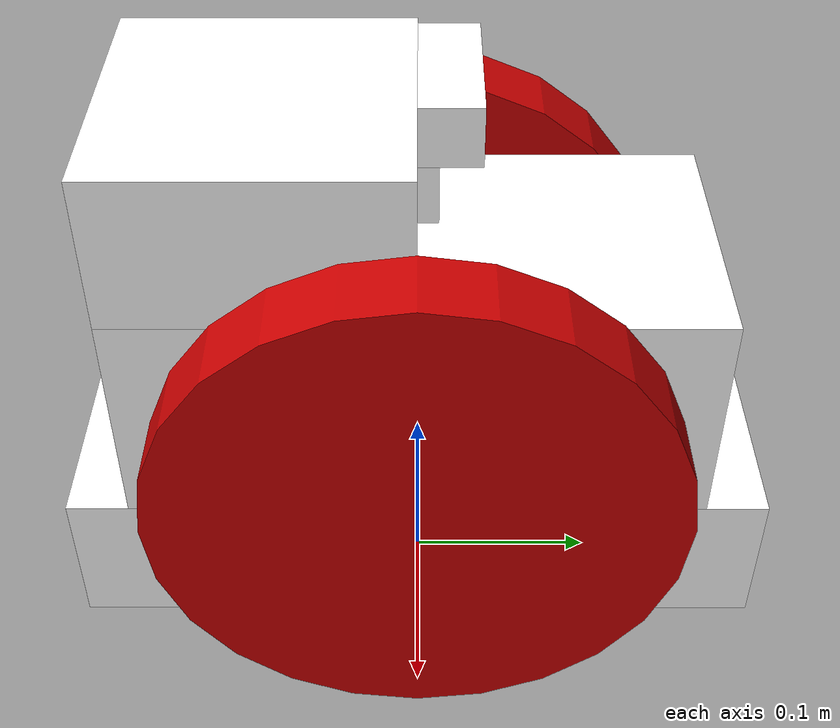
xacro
<?xml version="1.0"?>
<robot name="differential_wheeled_demo_robot" xmlns:xacro="http://ros.org/wiki/xacro">

<xacro:include filename="$(find demo_robot_description_pkg)/urdf/wheel2.urdf.xacro" />

<!-- Defining the colors used in this robot -->
  <material name="Black">
    <color rgba="0.0 0.0 0.0 1"/>
  </material>

  <material name="Red">
    <color rgba="0.8 0.0 0.0 1"/>
  </material>

  <material name="White">
    <color rgba="1.0 1.0 1.0 1"/>
  </material>

  <material name="Blue">
    <color rgba="0.0 0.0 0.8 1"/>
  </material>

  <!-- PROPERTY LIST: Mass is in kg, len in m -->
  <!--All units in m-kg-s-radians unit system -->
  <xacro:property name="M_PI" value="3.1415926535897931" />
  <xacro:property name="M_PI_2" value="1.570796327" />
  <xacro:property name="DEG_TO_RAD" value="0.017453293" />

  <!-- Base Properties -->
  <xacro:property name="base_mass" value="5.0" />
  <xacro:property name="base_height" value="0.080" />
  <xacro:property name="base_length" value="0.365" />
  <xacro:property name="base_width" value="0.15" />

  <!-- Mid Properties -->
  <xacro:property name="mid_mass" value="1.0" />
  <xacro:property name="mid_height" value="0.12" />
  <xacro:property name="mid_length" value="0.30" />
  <xacro:property name="mid_width" value="0.15" />

  <!-- Top Properties -->
  <xacro:property name="top_mass" value="0.50" />
  <xacro:property name="top_height" value="0.08" />
  <xacro:property name="top_length" value="0.15" />
  <xacro:property name="top_width" value="0.15" />

  <!-- Front Caster Wheel Properties -->
  <xacro:property name="caster_f_height" value="0.06" />
  <xacro:property name="caster_f_radius" value="0.03" />
  <xacro:property name="caster_f_mass" value="0.5" />

  <!-- Rear Caster Wheel Properties -->
  <xacro:property name="caster_b_height" value="0.06" />
  <xacro:property name="caster_b_radius" value="0.03" />
  <xacro:property name="caster_b_mass" value="0.5" />

  <!-- Side Wheels Properties -->
  <xacro:property name="wheel_mass" value="0" />
  <xacro:property name="base_x_origin_to_wheel_origin" value="0.08" />
  <xacro:property name="base_y_origin_to_wheel_origin" value="0.0" />
  <xacro:property name="base_z_origin_to_wheel_origin" value="0.0675" />

  <!-- Macro for calculating inertia of cylinder -->
  <xacro:macro name="cylinder_inertia" params="m r h">
    <inertia  ixx="${m*(3*r*r+h*h)/12}" ixy = "0" ixz = "0"
              iyy="${m*(3*r*r+h*h)/12}" iyz = "0"
              izz="${m*r*r/2}" />
  </xacro:macro>

  <!-- Base Footprint Link -->
  <!-- base_footprint is a fictitious link(frame) that is on the ground right below base_link origin -->
  <link name="base_footprint">
    <visual>
        <origin xyz="0 0 0" rpy="0 0 0" />
        <geometry>
            <box size="0.001 0.001 0.001" />
        </geometry>
    </visual>
  </link>

  <gazebo reference="base_footprint">
    <turnGravityOff>false</turnGravityOff>
  </gazebo>

  <!-- Footprint->Base Joint -->
  <joint name="base_footprint_joint" type="fixed">
    <origin xyz="0 0 ${caster_b_radius + (base_height / 2)}" rpy="0 0 0" />
    <parent link="base_footprint"/>
    <child link="base_link" />
  </joint>

  <!-- Base Link -->
  <link name="base_link">
    <inertial>
      <mass value="${base_mass}" />
      <origin xyz="0 0 0" />
      <inertia ixx="0.0001" ixy="0.0" ixz="0.0"
          iyy="0.0001" iyz="0.0"
          izz="0.0001" />
      <box size="${base_width} ${base_length} ${base_height}" />
    </inertial>
    <visual>
      <origin xyz="0 0 0" rpy="0 0 0" />
      <geometry>
          <box size="${base_width} ${base_length} ${base_height}" />
      </geometry>
      <material name="White" />
    </visual>
    <collision>
      <origin xyz="0 0 0" rpy="0 0 0" />
      <geometry>
          <box size="${base_width} ${base_length} ${base_height}" />
      </geometry>
    </collision>
  </link>

  <gazebo reference="base_link">
    <material>Gazebo/White</material>
    <turnGravityOff>false</turnGravityOff>
  </gazebo>

  <!-- Base->Mid Joint -->
  <joint name="base_mid_joint" type="fixed">
    <origin xyz="0 0 ${base_height/2 + mid_height/2}" rpy="0 0 0" />
    <parent link="base_link"/>
    <child link="mid_link" />
  </joint>

  <!-- Mid Link -->
  <link name="mid_link">
    <inertial>
      <mass value="${mid_mass}" />
      <origin xyz="0 0 0" />
      <inertia ixx="0.0001" ixy="0.0" ixz="0.0"
          iyy="0.0001" iyz="0.0"
          izz="0.0001" />
      <box size="${mid_width} ${mid_length} ${mid_height}" />
    </inertial>
    <visual>
      <origin xyz="0 0 0" rpy="0 0 0" />
      <geometry>
          <box size="${mid_width} ${mid_length} ${mid_height}" />
      </geometry>
      <material name="White" />
    </visual>
    <collision>
      <origin xyz="0 0 0" rpy="0 0 0 " />
      <geometry>
          <box size="${mid_width} ${mid_length} ${mid_height}" />
      </geometry>
    </collision>
  </link>

  <!-- Mid->Top Joint -->
  <joint name="mid_top_joint" type="fixed">
    <origin xyz="0 ${-top_length / 2} ${mid_height/2 + top_height/2}" rpy="0 0 0" />
    <parent link="mid_link"/>
    <child link="top_link" />
  </joint>

  <!-- Top Link -->
  <link name="top_link">
    <inertial>
      <mass value="${mid_mass}" />
      <origin xyz="0 0 0" />
      <inertia ixx="0.0001" ixy="0.0" ixz="0.0"
          iyy="0.0001" iyz="0.0"
          izz="0.0001" />
      <box size="${top_width} ${top_length} ${top_height}" />
    </inertial>
    <visual>
      <origin xyz="0 0 0" rpy="0 0 0" />
      <geometry>
          <box size="${top_width} ${top_length} ${top_height}" />
      </geometry>
      <material name="White" />
    </visual>
    <collision>
      <origin xyz="0 0 0" rpy="0 0 0" />
      <geometry>
          <box size="${top_width} ${top_length} ${top_height}" />
      </geometry>
    </collision>
  </link>

  <!-- D435 RGBD Camera -->
  <!-- Top->D435 RGBD Camera Joint -->
  <joint name="top_d435_joint" type="fixed">
    <origin xyz="0 ${top_length/2 + .015} ${top_height/2}" rpy="0 0 0" />
    <parent link="top_link"/>
    <child link="d435_link" />
  </joint>

  <!-- Top Link -->
  <link name="d435_link">
    <inertial>
      <mass value="${mid_mass}" />
      <origin xyz="0 0 0" />
      <inertia ixx="0.0001" ixy="0.0" ixz="0.0"
          iyy="0.0001" iyz="0.0"
          izz="0.0001" />
      <box size="0.08 0.03 0.03" />
    </inertial>
    <visual>
      <origin xyz="0 0 0" rpy="0 0 0" />
      <geometry>
          <box size="0.08 0.03 0.03" />
      </geometry>
      <material name="White" />
    </visual>
    <collision>
      <origin xyz="0 0 0" rpy="0 0 0 " />
      <geometry>
          <box size="0.08 0.03 0.03" />
      </geometry>
    </collision>
  </link>

  <!-- T265 Tracking Camera/IMU -->
  <!-- Top-T265 Joint -->
  <joint name="top_t265_joint" type="fixed">
    <origin xyz="0 ${top_length/2 + 0.005} ${top_height/2 - 0.03}" rpy="0 0 0" />
    <parent link="top_link"/>
    <child link="t265_link" />
  </joint>

  <!-- Top Link -->
  <link name="t265_link">
    <inertial>
      <mass value="${mid_mass}" />
      <origin xyz="0 0 0" />
      <inertia ixx="0.0001" ixy="0.0" ixz="0.0"
          iyy="0.0001" iyz="0.0"
          izz="0.0001" />
      <box size="0.08 0.01 0.03" />
    </inertial>
    <visual>
      <origin xyz="0 0 0" rpy="0 0 0" />
      <geometry>
          <box size="0.08 0.01 0.03" />
      </geometry>
      <material name="White" />
    </visual>
    <collision>
      <origin xyz="0 0 0" rpy="0 0 0 " />
      <geometry>
          <box size="0.08 0.01 0.03" />
      </geometry>
    </collision>
  </link>

  <!-- Front-Downward-Facing Mono Camera -->

  <!-- Right Mono Camera 1 -->

  <!-- Right Mono Camera 2 -->
  <!-- Left Mono Camera 1 -->
  <!-- Left Mono Camera 2 -->

  <gazebo reference="top_link">
    <material>Gazebo/White</material>
    <turnGravityOff>false</turnGravityOff>
  </gazebo>

  <!-- Front Castor wheel -->
  <link name="caster_front_link">
    <visual>
      <origin xyz="0 0 0" rpy="${M_PI/2} 0 0" />
      <geometry>
				<sphere radius="${caster_f_radius}" />
      </geometry>
      <material name="Black" />
    </visual>
    <collision>
      <geometry>
				<sphere radius="${caster_f_radius}" />
      </geometry>
    <origin xyz="0 0 0" rpy="${M_PI/2} 0 0" />
    </collision>
    <inertial>
      <mass value="${caster_f_mass}" />
      <origin xyz="0 0 0" />
      <inertia ixx="0.001" ixy="0.0" ixz="0.0"
               iyy="0.001" iyz="0.0"
               izz="0.001" />
    </inertial>
  </link>

	<joint name="caster_front_joint" type="fixed">
    <parent link="base_link"/>
    <child link="caster_front_link"/>
    <origin xyz="0.0 0.15 -.03" rpy="${-M_PI/2} 0 0"/>
  </joint>

  <gazebo reference="caster_front_link">
    <turnGravityOff>false</turnGravityOff>
  </gazebo>

  <link name="caster_back_link">
  <visual>
    <origin xyz="0 0 0 " rpy="${M_PI/2} 0 0" />
    <geometry>
			<sphere radius="${caster_b_radius}" />
    </geometry>
    <material name="Black" />
  </visual>
  <collision>
    <geometry>
			<sphere radius="${caster_b_radius}" />
     </geometry>
     <origin xyz="0 0 0 " rpy="${M_PI/2} 0 0" />
    </collision>
    <inertial>
      <mass value="${caster_b_mass}" />
      <origin xyz="0 0 0" />
      <inertia ixx="0.001" ixy="0.0" ixz="0.0"
               iyy="0.001" iyz="0.0"
               izz="0.001" />
    </inertial>
  </link>

  <joint name="caster_back_joint" type="fixed">
    <parent link="base_link"/>
    <child link="caster_back_link"/>
    <origin xyz="0 -0.15 -${caster_b_radius}" rpy="${-M_PI/2} 0 0"/>
  </joint>

  <gazebo reference="caster_back_link">
   <turnGravityOff>false</turnGravityOff>
  </gazebo>

  <!-- Left Wheel -->
  <link name="wheel_left_link">
    <visual>
      <origin xyz="0 0 0" rpy="${M_PI/2} 0  ${M_PI/2} " />
      <geometry>
        <cylinder length="${0.04}" radius="${0.135}" />
      </geometry>
      <material name="Red" />
    </visual>
    <collision>
      <origin xyz="0 0 0" rpy="${M_PI/2} 0 ${M_PI/2} " />
      <geometry>
        <cylinder length="${0.04}" radius="${0.04}" />
      </geometry>
    </collision>
    <inertial>
      <mass value="${wheel_mass}" />
      <origin xyz="0 0 0" />
      <inertia ixx="0.001" ixy="0.0" ixz="0.0"
              iyy="0.001" iyz="0.0"
              izz="0.001" />
    </inertial>
  </link>

  <!-- Left Wheel Joint -->
	<joint name="wheel_left_joint" type="continuous">
    <parent link="base_link"/>
    <child link="wheel_left_link"/>
    <origin xyz="0.096 0 ${base_z_origin_to_wheel_origin}" rpy="${-M_PI/2} 0 0"/>
  </joint>

  <!-- Right Wheel -->
  <link name="wheel_right_link">
    <visual>
      <origin xyz="0 0 0" rpy="${M_PI/2} 0  ${M_PI/2} " />
      <geometry>
        <cylinder length="${0.04}" radius="${0.135}" />
      </geometry>
      <material name="Red" />
    </visual>
    <collision>
      <origin xyz="0 0 0" rpy="${M_PI/2} 0 ${M_PI/2} " />
      <geometry>
        <cylinder length="${0.04}" radius="${0.04}" />
      </geometry>
    </collision>
    <inertial>
      <mass value="${wheel_mass}" />
      <origin xyz="0 0 0" />
      <inertia ixx="0.001" ixy="0.0" ixz="0.0"
              iyy="0.001" iyz="0.0"
              izz="0.001" />
    </inertial>
  </link>

  <!-- Right Wheel Joint -->
	<joint name="wheel_right_joint" type="continuous">
    <parent link="base_link"/>
    <child link="wheel_right_link"/>
    <origin xyz="-0.096 0 ${base_z_origin_to_wheel_origin}" rpy="${-M_PI/2} 0 0"/>
  </joint>

  <!-- Wheel Transmission -->
  <transmission name="wheel_left_joint_trans">
    <type>transmission_interface/SimpleTransmission</type>
    <joint name="wheel_left_joint" />
    <actuator name="$wheel_left_joint_motor">
      <hardwareInterface>EffortJointInterface</hardwareInterface>
      <mechanicalReduction>1</mechanicalReduction>
    </actuator>
  </transmission>

  <transmission name="wheel_right_joint_trans">
    <type>transmission_interface/SimpleTransmission</type>
    <joint name="wheel_right_joint" />
    <actuator name="$wheel_right_joint_motor">
      <hardwareInterface>EffortJointInterface</hardwareInterface>
      <mechanicalReduction>1</mechanicalReduction>
    </actuator>
  </transmission>

  <!-- Gazebo Differential Drive Controller -->
	<gazebo>
  	<plugin name="differential_drive_controller" filename="libgazebo_ros_diff_drive.so">
	    <legacyMode>true</legacyMode>
	    <rosDebugLevel>Debug</rosDebugLevel>
	    <publishWheelTF>false</publishWheelTF>
	    <robotNamespace>/</robotNamespace>
	    <publishTf>1</publishTf>
	    <publishWheelJointState>false</publishWheelJointState>
	    <alwaysOn>true</alwaysOn>
	    <updateRate>100.0</updateRate>
	    <leftJoint>front_left_wheel_joint</leftJoint>
	    <rightJoint>front_right_wheel_joint</rightJoint>
	    <wheelSeparation>${2*base_width}</wheelSeparation>
	    <wheelDiameter>${2*wheel_radius}</wheelDiameter>
	    <broadcastTF>1</broadcastTF>
	    <wheelTorque>30</wheelTorque>
	    <wheelAcceleration>1.8</wheelAcceleration>
	    <commandTopic>cmd_vel</commandTopic>
	    <odometryFrame>odom</odometryFrame>
	    <odometryTopic>odom</odometryTopic>
	    <robotBaseFrame>base_footprint</robotBaseFrame>

   </plugin>
  </gazebo>
</robot>
